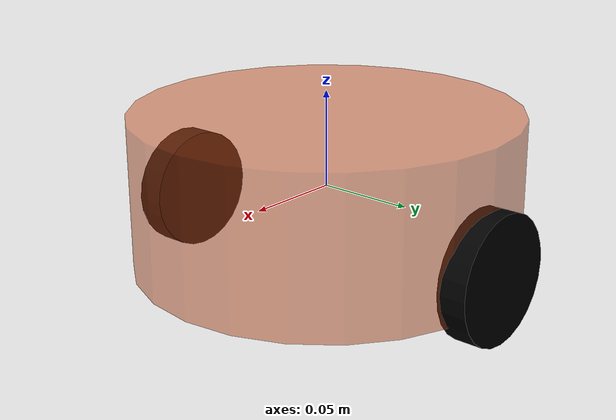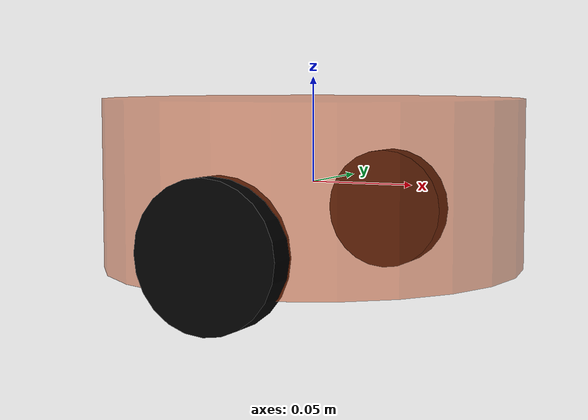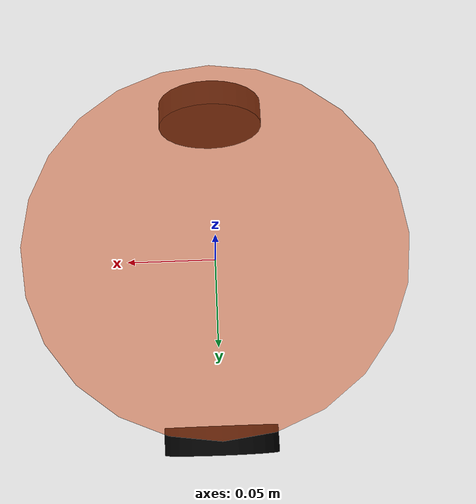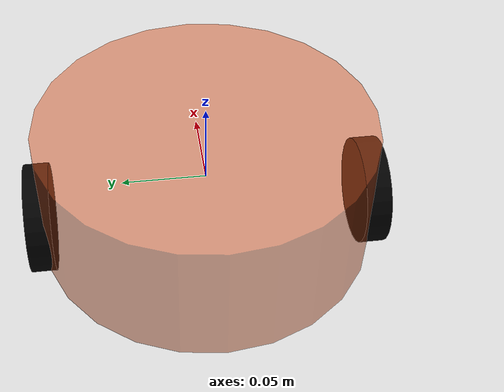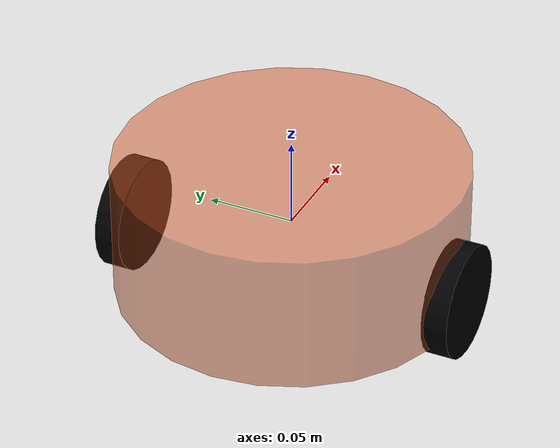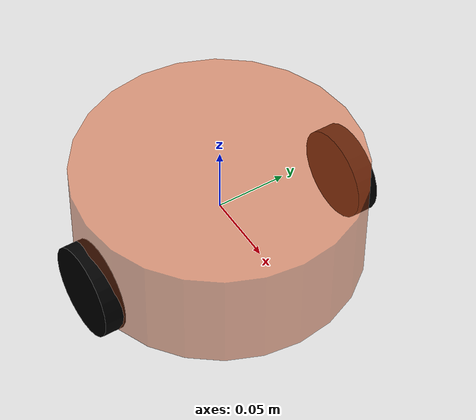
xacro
<robot name="my_base" xmlns:xacro="http://www.ros.org/wiki/xacro">
    <xacro:property name="PI" value="3.141"/>
    <material name="black">
        <color rgba="0.0 0.0 0.0 1.0" />
    </material>
    <xacro:property name="base_link_radius" value="0.1" /> <!-- base_link 半径 -->
    <xacro:property name="base_link_length" value="0.08" /> <!-- base_link 长 -->
    <xacro:property name="earth_space" value="0.015" /> <!-- 离地间距 -->

    <link name="base_link">
        <visual>
            <geometry>
                <cylinder radius="${base_link_radius}" length="${base_link_length}" />
            </geometry>
            <origin xyz="0 0 0" rpy="0 0 0" />
            <material name="yellow">
                <color rgba="0.8 0.3 0.1 0.5" />
            </material>
        </visual>
    </link>

    <!-- 驱动轮属性 -->
    <xacro:property name="wheel_radius" value="0.0325" /><!-- 半径 -->
    <xacro:property name="wheel_length" value="0.015" /><!-- 宽度 -->
    <!-- 驱动轮宏实现 -->
    <xacro:macro name="add_wheels" params="name flag">
      <link name="${name}_wheel">
        <visual>
          <geometry>
            <cylinder radius="${wheel_radius}" length="${wheel_length}" />
          </geometry>
          <origin xyz="0.0 0.0 0.0" rpy="${PI / 2} 0.0 0.0" />
          <material name="black" />
        </visual>
      </link>

      <joint name="${name}_wheel2base_link" type="continuous">
        <parent link="base_link" />
        <child link="${name}_wheel" />
        <origin xyz="0 ${flag * base_link_radius} ${-(earth_space + base_link_length / 2 - wheel_radius) }" />
        <axis xyz="0 1 0" />
      </joint>
    </xacro:macro>
    <xacro:add_wheels name="left" flag="1" />
    <xacro:add_wheels name="right" flag="-1" />

    </robot>
